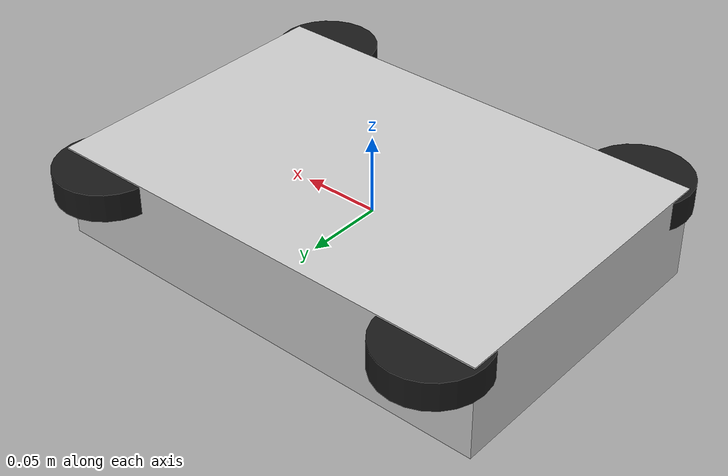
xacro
<?xml version="1.0"?>
<robot xmlns:xacro="http://www.ros.org/wiki/xacro" name="omni4_robot">

  <!-- Parameters -->
  <xacro:property name="wheel_radius" value="0.033"/>
  <xacro:property name="wheel_width" value="0.018"/>
  <xacro:property name="wheel_x" value="0.12"/>
  <xacro:property name="wheel_y" value="0.095"/>
  <xacro:property name="base_mass" value="2.0"/>
  <xacro:property name="wheel_mass" value="0.1"/>

  <!-- Base link -->
  <link name="base_link">
    <inertial>
      <mass value="${base_mass}"/>
      <inertia ixx="0.01" ixy="0" ixz="0" iyy="0.01" iyz="0" izz="0.02"/>
    </inertial>
    <visual>
      <geometry>
        <box size="0.3 0.2 0.06"/>
      </geometry>
      <material name="base_material">
        <color rgba="0.8 0.8 0.8 1"/>
      </material>
    </visual>
    <collision>
      <geometry>
        <box size="0.3 0.2 0.06"/>
      </geometry>
    </collision>
  </link>

  <!-- Wheel link macro -->
  <xacro:macro name="omni_wheel" params="name x y">
    <link name="${name}_link">
      <inertial>
        <mass value="${wheel_mass}"/>
        <inertia ixx="0.00001" ixy="0" ixz="0" iyy="0.00001" iyz="0" izz="0.00002"/>
      </inertial>
      <visual>
        <origin xyz="0 0 0" rpy="0 0 0"/>
        <geometry>
          <cylinder radius="${wheel_radius}" length="${wheel_width}"/>
        </geometry>
        <material name="wheel_material">
          <color rgba="0.1 0.1 0.1 1"/>
        </material>
      </visual>
      <collision>
        <geometry>
          <cylinder radius="${wheel_radius}" length="${wheel_width}"/>
        </geometry>
      </collision>
    </link>

    <joint name="${name}_joint" type="continuous">
      <parent link="base_link"/>
      <child link="${name}_link"/>
      <origin xyz="${x} ${y} 0.02" rpy="0 0 1.5708"/>
      <axis xyz="0 0 1"/>
      <limit effort="10" velocity="20"/>
      <dynamics damping="0.0" friction="0.0"/>
    </joint>
  </xacro:macro>

  <!-- Define four omni wheels (front_left, front_right, rear_left, rear_right) -->
  <xacro:omni_wheel name="wheel_front_left" x="${wheel_x}" y="${wheel_y}"/>
  <xacro:omni_wheel name="wheel_front_right" x="${wheel_x}" y="-${wheel_y}"/>
  <xacro:omni_wheel name="wheel_rear_left" x="-${wheel_x}" y="${wheel_y}"/>
  <xacro:omni_wheel name="wheel_rear_right" x="-${wheel_x}" y="-${wheel_y}"/>

  <!-- ros2_control plugin config -->
  <ros2_control name="GazeboSystem" type="system">
    <hardware>
      <plugin>gz_ros2_control/GazeboSimSystem</plugin>
    </hardware>

    <joint name="wheel_front_left_joint">
      <command_interface name="velocity"/>
      <state_interface name="position"/>
      <state_interface name="velocity"/>
    </joint>

    <joint name="wheel_front_right_joint">
      <command_interface name="velocity"/>
      <state_interface name="position"/>
      <state_interface name="velocity"/>
    </joint>

    <joint name="wheel_rear_left_joint">
      <command_interface name="velocity"/>
      <state_interface name="position"/>
      <state_interface name="velocity"/>
    </joint>

    <joint name="wheel_rear_right_joint">
      <command_interface name="velocity"/>
      <state_interface name="position"/>
      <state_interface name="velocity"/>
    </joint>
  </ros2_control>

  <gazebo>
    <plugin filename="libgz_ros2_control-system.so" name="gz_ros2_control::GazeboSimROS2ControlPlugin">
      <parameters>$(find gazebo_simulator)/config/omni_controller_config.yaml</parameters>
    </plugin>
  </gazebo>

</robot>
